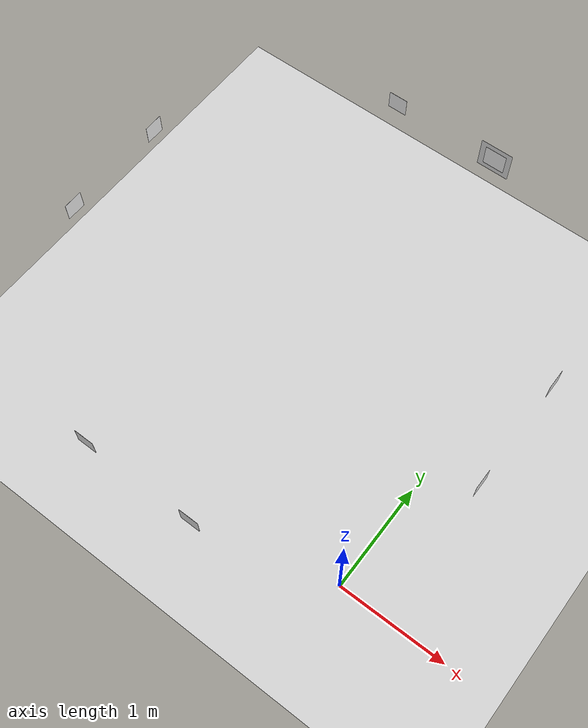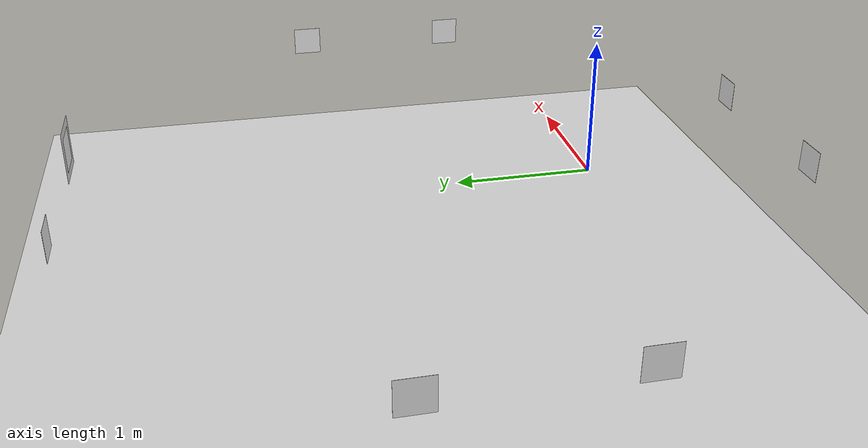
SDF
<?xml version="1.0"?>

<sdf version="1.6">
  <world name="default">

    <!-- Tweak to run at higher or lower speeds -->
    <physics name="normal" type="ode">
      <real_time_update_rate>1000</real_time_update_rate>
      <max_step_size>0.001</max_step_size>
    </physics>

    <!-- Ground plane -->
    <include>
      <uri>model://ground_plane</uri>
    </include>

    <!-- Lighting -->
    <include>
      <uri>model://sun</uri>
    </include>

    <!-- ArUco markers -->
    <model name="marker0">
      <include>
        <static>true</static>
        <uri>model://marker_0</uri>
      </include>
      <pose>0.5 1 1 0 -1.5707963267948966 0</pose>
    </model>
    <model name="marker1">
      <include>
        <static>true</static>
        <uri>model://marker_1</uri>
      </include>
      <pose>0.5 2 1 0 -1.5707963267948966 0</pose>
    </model>
    <model name="marker2">
      <include>
        <static>true</static>
        <uri>model://marker_2</uri>
      </include>
      <pose>-1 -0.5 1 0 -1.5707963267948966 -1.5707963267948966</pose>
    </model>
    <model name="marker3">
      <include>
        <static>true</static>
        <uri>model://marker_3</uri>
      </include>
      <pose>-2 -0.5 1 0 -1.5707963267948966 -1.5707963267948966</pose>
    </model>
    <model name="marker4">
      <include>
        <static>true</static>
        <uri>model://marker_4</uri>
      </include>
      <pose>-1 3.5 1 0 -1.5707963267948966 1.5707963267948966</pose>
    </model>
    <model name="marker5">
      <include>
        <static>true</static>
        <uri>model://marker_5</uri>
      </include>
      <pose>-2 3.5 1 0 -1.5707963267948966 1.5707963267948966</pose>
    </model>
    <model name="marker6">
      <include>
        <static>true</static>
        <uri>model://marker_6</uri>
      </include>
      <pose>-3.5 2 1 0 -1.5707963267948966 3.141592653589793</pose>
    </model>
    <model name="marker7">
      <include>
        <static>true</static>
        <uri>model://marker_7</uri>
      </include>
      <pose>-3.5 1 1 0 -1.5707963267948966 3.141592653589793</pose>
    </model>

  </world>
</sdf>

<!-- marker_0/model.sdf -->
<sdf version='1.5'>
  <model name='marker_0'>

    <link name='marker'>
      <pose frame=''>0 0 0 0 0 0</pose>
      <visual name='visual'>
        <geometry>
          <box>
            <size>0.1778 0.1778 1e-5</size>
          </box>
        </geometry>
        <material>
          <script>
            <uri>model://marker_0/materials/scripts</uri>
            <uri>model://marker_0/materials/textures</uri>
            <name>ArucoVisualMarker0/Marker</name>
          </script>
          <ambient>1 1 1 1</ambient>
          <diffuse>1 1 1 1</diffuse>
          <specular>0 0 0 1</specular>
          <emissive>1 1 1 0</emissive>
          <shader type='vertex'>
            <normal_map>__default__</normal_map>
          </shader>
        </material>
        <pose frame=''>0 0 0 0 0 0</pose>
        <cast_shadows>1</cast_shadows>
        <transparency>0</transparency>
      </visual>
      <collision name='collision'>
        <laser_retro>0</laser_retro>
        <max_contacts>10</max_contacts>
        <pose frame=''>0 0 0 0 0 0</pose>
        <geometry>
          <box>
            <size>0.1778 0.1778 1e-05</size>
          </box>
        </geometry>
      </collision>
    </link>

    <link name='marker_pad'>
      <pose frame='marker'>0 0 -1e-3 0 0 0</pose>
      <visual name='visual'>
        <geometry>
          <box>
            <size>0.1778 0.1778 1e-5</size>
          </box>
        </geometry>
        <material>
          <lighting>1</lighting>
          <script>
            <uri>file://media/materials/scripts/gazebo.material</uri>
            <name>Gazebo/White</name>
          </script>
          <ambient>0.3 0.3 0.3 1</ambient>
          <diffuse>0.7 0.7 0.7 1</diffuse>
          <specular>0.01 0.01 0.01 1</specular>
          <emissive>1 1 1 0</emissive>
          <shader type='vertex'>
            <normal_map>__default__</normal_map>
          </shader>
        </material>
        <cast_shadows>1</cast_shadows>
        <transparency>0</transparency>
      </visual>
      <collision name='collision'>
        <laser_retro>0</laser_retro>
        <max_contacts>10</max_contacts>
        <pose frame=''>0 0 0 0 0 0</pose>
        <geometry>
          <box>
            <size>0.1778 0.1778 1e-5</size>
          </box>
        </geometry>
      </collision>
    </link>

    <joint name='marker_JOINT_marker_pad' type='revolute'>
      <parent>marker</parent>
      <child>marker_pad</child>
      <pose frame=''>0 0 0 0 0 0</pose>
      <axis>
        <xyz>0 0 1</xyz>
        <limit>
          <upper>0</upper>
          <lower>0</lower>
        </limit>
      </axis>
    </joint>

    <static>1</static>
    <allow_auto_disable>1</allow_auto_disable>

  </model>
</sdf>

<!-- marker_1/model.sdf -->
<sdf version='1.5'>
  <model name='marker_1'>

    <link name='marker'>
      <pose frame=''>0 0 0 0 0 0</pose>
      <visual name='visual'>
        <geometry>
          <box>
            <size>0.1778 0.1778 1e-5</size>
          </box>
        </geometry>
        <material>
          <script>
            <uri>model://marker_1/materials/scripts</uri>
            <uri>model://marker_1/materials/textures</uri>
            <name>ArucoVisualMarker1/Marker</name>
          </script>
          <ambient>1 1 1 1</ambient>
          <diffuse>1 1 1 1</diffuse>
          <specular>0 0 0 1</specular>
          <emissive>1 1 1 0</emissive>
          <shader type='vertex'>
            <normal_map>__default__</normal_map>
          </shader>
        </material>
        <pose frame=''>0 0 0 0 0 0</pose>
        <cast_shadows>1</cast_shadows>
        <transparency>0</transparency>
      </visual>
      <collision name='collision'>
        <laser_retro>0</laser_retro>
        <max_contacts>10</max_contacts>
        <pose frame=''>0 0 0 0 0 0</pose>
        <geometry>
          <box>
            <size>0.1778 0.1778 1e-05</size>
          </box>
        </geometry>
      </collision>
    </link>

    <link name='marker_pad'>
      <pose frame='marker'>0 0 -1e-3 0 0 0</pose>
      <visual name='visual'>
        <geometry>
          <box>
            <size>0.1778 0.1778 1e-5</size>
          </box>
        </geometry>
        <material>
          <lighting>1</lighting>
          <script>
            <uri>file://media/materials/scripts/gazebo.material</uri>
            <name>Gazebo/White</name>
          </script>
          <ambient>0.3 0.3 0.3 1</ambient>
          <diffuse>0.7 0.7 0.7 1</diffuse>
          <specular>0.01 0.01 0.01 1</specular>
          <emissive>1 1 1 0</emissive>
          <shader type='vertex'>
            <normal_map>__default__</normal_map>
          </shader>
        </material>
        <cast_shadows>1</cast_shadows>
        <transparency>0</transparency>
      </visual>
      <collision name='collision'>
        <laser_retro>0</laser_retro>
        <max_contacts>10</max_contacts>
        <pose frame=''>0 0 0 0 0 0</pose>
        <geometry>
          <box>
            <size>0.1778 0.1778 1e-5</size>
          </box>
        </geometry>
      </collision>
    </link>

    <joint name='marker_JOINT_marker_pad' type='revolute'>
      <parent>marker</parent>
      <child>marker_pad</child>
      <pose frame=''>0 0 0 0 0 0</pose>
      <axis>
        <xyz>0 0 1</xyz>
        <limit>
          <upper>0</upper>
          <lower>0</lower>
        </limit>
      </axis>
    </joint>

    <static>1</static>
    <allow_auto_disable>1</allow_auto_disable>

  </model>
</sdf>

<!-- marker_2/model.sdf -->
<sdf version='1.5'>
  <model name='marker_2'>

    <link name='marker'>
      <pose frame=''>0 0 0 0 0 0</pose>
      <visual name='visual'>
        <geometry>
          <box>
            <size>0.1778 0.1778 1e-5</size>
          </box>
        </geometry>
        <material>
          <script>
            <uri>model://marker_2/materials/scripts</uri>
            <uri>model://marker_2/materials/textures</uri>
            <name>ArucoVisualMarker2/Marker</name>
          </script>
          <ambient>1 1 1 1</ambient>
          <diffuse>1 1 1 1</diffuse>
          <specular>0 0 0 1</specular>
          <emissive>1 1 1 0</emissive>
          <shader type='vertex'>
            <normal_map>__default__</normal_map>
          </shader>
        </material>
        <pose frame=''>0 0 0 0 0 0</pose>
        <cast_shadows>1</cast_shadows>
        <transparency>0</transparency>
      </visual>
      <collision name='collision'>
        <laser_retro>0</laser_retro>
        <max_contacts>10</max_contacts>
        <pose frame=''>0 0 0 0 0 0</pose>
        <geometry>
          <box>
            <size>0.1778 0.1778 1e-05</size>
          </box>
        </geometry>
      </collision>
    </link>

    <link name='marker_pad'>
      <pose frame='marker'>0 0 -1e-3 0 0 0</pose>
      <visual name='visual'>
        <geometry>
          <box>
            <size>0.1778 0.1778 1e-5</size>
          </box>
        </geometry>
        <material>
          <lighting>1</lighting>
          <script>
            <uri>file://media/materials/scripts/gazebo.material</uri>
            <name>Gazebo/White</name>
          </script>
          <ambient>0.3 0.3 0.3 1</ambient>
          <diffuse>0.7 0.7 0.7 1</diffuse>
          <specular>0.01 0.01 0.01 1</specular>
          <emissive>1 1 1 0</emissive>
          <shader type='vertex'>
            <normal_map>__default__</normal_map>
          </shader>
        </material>
        <cast_shadows>1</cast_shadows>
        <transparency>0</transparency>
      </visual>
      <collision name='collision'>
        <laser_retro>0</laser_retro>
        <max_contacts>10</max_contacts>
        <pose frame=''>0 0 0 0 0 0</pose>
        <geometry>
          <box>
            <size>0.1778 0.1778 1e-5</size>
          </box>
        </geometry>
      </collision>
    </link>

    <joint name='marker_JOINT_marker_pad' type='revolute'>
      <parent>marker</parent>
      <child>marker_pad</child>
      <pose frame=''>0 0 0 0 0 0</pose>
      <axis>
        <xyz>0 0 1</xyz>
        <limit>
          <upper>0</upper>
          <lower>0</lower>
        </limit>
      </axis>
    </joint>

    <static>1</static>
    <allow_auto_disable>1</allow_auto_disable>

  </model>
</sdf>

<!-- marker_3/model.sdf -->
<sdf version='1.5'>
  <model name='marker_3'>

    <link name='marker'>
      <pose frame=''>0 0 0 0 0 0</pose>
      <visual name='visual'>
        <geometry>
          <box>
            <size>0.1778 0.1778 1e-5</size>
          </box>
        </geometry>
        <material>
          <script>
            <uri>model://marker_3/materials/scripts</uri>
            <uri>model://marker_3/materials/textures</uri>
            <name>ArucoVisualMarker3/Marker</name>
          </script>
          <ambient>1 1 1 1</ambient>
          <diffuse>1 1 1 1</diffuse>
          <specular>0 0 0 1</specular>
          <emissive>1 1 1 0</emissive>
          <shader type='vertex'>
            <normal_map>__default__</normal_map>
          </shader>
        </material>
        <pose frame=''>0 0 0 0 0 0</pose>
        <cast_shadows>1</cast_shadows>
        <transparency>0</transparency>
      </visual>
      <collision name='collision'>
        <laser_retro>0</laser_retro>
        <max_contacts>10</max_contacts>
        <pose frame=''>0 0 0 0 0 0</pose>
        <geometry>
          <box>
            <size>0.1778 0.1778 1e-05</size>
          </box>
        </geometry>
      </collision>
    </link>

    <link name='marker_pad'>
      <pose frame='marker'>0 0 -1e-3 0 0 0</pose>
      <visual name='visual'>
        <geometry>
          <box>
            <size>0.1778 0.1778 1e-5</size>
          </box>
        </geometry>
        <material>
          <lighting>1</lighting>
          <script>
            <uri>file://media/materials/scripts/gazebo.material</uri>
            <name>Gazebo/White</name>
          </script>
          <ambient>0.3 0.3 0.3 1</ambient>
          <diffuse>0.7 0.7 0.7 1</diffuse>
          <specular>0.01 0.01 0.01 1</specular>
          <emissive>1 1 1 0</emissive>
          <shader type='vertex'>
            <normal_map>__default__</normal_map>
          </shader>
        </material>
        <cast_shadows>1</cast_shadows>
        <transparency>0</transparency>
      </visual>
      <collision name='collision'>
        <laser_retro>0</laser_retro>
        <max_contacts>10</max_contacts>
        <pose frame=''>0 0 0 0 0 0</pose>
        <geometry>
          <box>
            <size>0.1778 0.1778 1e-5</size>
          </box>
        </geometry>
      </collision>
    </link>

    <joint name='marker_JOINT_marker_pad' type='revolute'>
      <parent>marker</parent>
      <child>marker_pad</child>
      <pose frame=''>0 0 0 0 0 0</pose>
      <axis>
        <xyz>0 0 1</xyz>
        <limit>
          <upper>0</upper>
          <lower>0</lower>
        </limit>
      </axis>
    </joint>

    <static>1</static>
    <allow_auto_disable>1</allow_auto_disable>

  </model>
</sdf>

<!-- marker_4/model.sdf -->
<sdf version='1.5'>
  <model name='marker_4'>

    <link name='marker'>
      <pose frame=''>0 0 0 0 0 0</pose>
      <visual name='visual'>
        <geometry>
          <box>
            <size>0.2 0.2 1e-5</size>
          </box>
        </geometry>
        <material>
          <script>
            <uri>model://marker_4/materials/scripts</uri>
            <uri>model://marker_4/materials/textures</uri>
            <name>ArucoVisualMarker4/Marker</name>
          </script>
          <ambient>1 1 1 1</ambient>
          <diffuse>1 1 1 1</diffuse>
          <specular>0 0 0 1</specular>
          <emissive>1 1 1 0</emissive>
          <shader type='vertex'>
            <normal_map>__default__</normal_map>
          </shader>
        </material>
        <pose frame=''>0 0 0 0 0 0</pose>
        <cast_shadows>1</cast_shadows>
        <transparency>0</transparency>
      </visual>
      <collision name='collision'>
        <laser_retro>0</laser_retro>
        <max_contacts>10</max_contacts>
        <pose frame=''>0 0 0 0 0 0</pose>
        <geometry>
          <box>
            <size>0.2 0.2 1e-05</size>
          </box>
        </geometry>
      </collision>
    </link>

    <link name='marker_pad'>
      <pose frame='marker'>0 0 -1e-3 0 0 0</pose>
      <visual name='visual'>
        <geometry>
          <box>
            <size>0.3 0.3 1e-5</size>
          </box>
        </geometry>
        <material>
          <lighting>1</lighting>
          <script>
            <uri>file://media/materials/scripts/gazebo.material</uri>
            <name>Gazebo/White</name>
          </script>
          <ambient>0.3 0.3 0.3 1</ambient>
          <diffuse>0.7 0.7 0.7 1</diffuse>
          <specular>0.01 0.01 0.01 1</specular>
          <emissive>1 1 1 0</emissive>
          <shader type='vertex'>
            <normal_map>__default__</normal_map>
          </shader>
        </material>
        <cast_shadows>1</cast_shadows>
        <transparency>0</transparency>
      </visual>
      <collision name='collision'>
        <laser_retro>0</laser_retro>
        <max_contacts>10</max_contacts>
        <pose frame=''>0 0 0 0 0 0</pose>
        <geometry>
          <box>
            <size>0.1778 0.1778 1e-5</size>
          </box>
        </geometry>
      </collision>
    </link>

    <joint name='marker_JOINT_marker_pad' type='revolute'>
      <parent>marker</parent>
      <child>marker_pad</child>
      <pose frame=''>0 0 0 0 0 0</pose>
      <axis>
        <xyz>0 0 1</xyz>
        <limit>
          <upper>0</upper>
          <lower>0</lower>
        </limit>
      </axis>
    </joint>

    <static>1</static>
    <allow_auto_disable>1</allow_auto_disable>

  </model>
</sdf>

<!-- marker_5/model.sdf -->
<sdf version='1.5'>
  <model name='marker_5'>

    <link name='marker'>
      <pose frame=''>0 0 0 0 0 0</pose>
      <visual name='visual'>
        <geometry>
          <box>
            <size>0.1778 0.1778 1e-5</size>
          </box>
        </geometry>
        <material>
          <script>
            <uri>model://marker_5/materials/scripts</uri>
            <uri>model://marker_5/materials/textures</uri>
            <name>ArucoVisualMarker5/Marker</name>
          </script>
          <ambient>1 1 1 1</ambient>
          <diffuse>1 1 1 1</diffuse>
          <specular>0 0 0 1</specular>
          <emissive>1 1 1 0</emissive>
          <shader type='vertex'>
            <normal_map>__default__</normal_map>
          </shader>
        </material>
        <pose frame=''>0 0 0 0 0 0</pose>
        <cast_shadows>1</cast_shadows>
        <transparency>0</transparency>
      </visual>
      <collision name='collision'>
        <laser_retro>0</laser_retro>
        <max_contacts>10</max_contacts>
        <pose frame=''>0 0 0 0 0 0</pose>
        <geometry>
          <box>
            <size>0.1778 0.1778 1e-05</size>
          </box>
        </geometry>
      </collision>
    </link>

    <link name='marker_pad'>
      <pose frame='marker'>0 0 -1e-3 0 0 0</pose>
      <visual name='visual'>
        <geometry>
          <box>
            <size>0.1778 0.1778 1e-5</size>
          </box>
        </geometry>
        <material>
          <lighting>1</lighting>
          <script>
            <uri>file://media/materials/scripts/gazebo.material</uri>
            <name>Gazebo/White</name>
          </script>
          <ambient>0.3 0.3 0.3 1</ambient>
          <diffuse>0.7 0.7 0.7 1</diffuse>
          <specular>0.01 0.01 0.01 1</specular>
          <emissive>1 1 1 0</emissive>
          <shader type='vertex'>
            <normal_map>__default__</normal_map>
          </shader>
        </material>
        <cast_shadows>1</cast_shadows>
        <transparency>0</transparency>
      </visual>
      <collision name='collision'>
        <laser_retro>0</laser_retro>
        <max_contacts>10</max_contacts>
        <pose frame=''>0 0 0 0 0 0</pose>
        <geometry>
          <box>
            <size>0.1778 0.1778 1e-5</size>
          </box>
        </geometry>
      </collision>
    </link>

    <joint name='marker_JOINT_marker_pad' type='revolute'>
      <parent>marker</parent>
      <child>marker_pad</child>
      <pose frame=''>0 0 0 0 0 0</pose>
      <axis>
        <xyz>0 0 1</xyz>
        <limit>
          <upper>0</upper>
          <lower>0</lower>
        </limit>
      </axis>
    </joint>

    <static>1</static>
    <allow_auto_disable>1</allow_auto_disable>

  </model>
</sdf>

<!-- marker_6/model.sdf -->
<sdf version='1.5'>
  <model name='marker_6'>

    <link name='marker'>
      <pose frame=''>0 0 0 0 0 0</pose>
      <visual name='visual'>
        <geometry>
          <box>
            <size>0.1778 0.1778 1e-5</size>
          </box>
        </geometry>
        <material>
          <script>
            <uri>model://marker_6/materials/scripts</uri>
            <uri>model://marker_6/materials/textures</uri>
            <name>ArucoVisualMarker6/Marker</name>
          </script>
          <ambient>1 1 1 1</ambient>
          <diffuse>1 1 1 1</diffuse>
          <specular>0 0 0 1</specular>
          <emissive>1 1 1 0</emissive>
          <shader type='vertex'>
            <normal_map>__default__</normal_map>
          </shader>
        </material>
        <pose frame=''>0 0 0 0 0 0</pose>
        <cast_shadows>1</cast_shadows>
        <transparency>0</transparency>
      </visual>
      <collision name='collision'>
        <laser_retro>0</laser_retro>
        <max_contacts>10</max_contacts>
        <pose frame=''>0 0 0 0 0 0</pose>
        <geometry>
          <box>
            <size>0.1778 0.1778 1e-05</size>
          </box>
        </geometry>
      </collision>
    </link>

    <link name='marker_pad'>
      <pose frame='marker'>0 0 -1e-3 0 0 0</pose>
      <visual name='visual'>
        <geometry>
          <box>
            <size>0.1778 0.1778 1e-5</size>
          </box>
        </geometry>
        <material>
          <lighting>1</lighting>
          <script>
            <uri>file://media/materials/scripts/gazebo.material</uri>
            <name>Gazebo/White</name>
          </script>
          <ambient>0.3 0.3 0.3 1</ambient>
          <diffuse>0.7 0.7 0.7 1</diffuse>
          <specular>0.01 0.01 0.01 1</specular>
          <emissive>1 1 1 0</emissive>
          <shader type='vertex'>
            <normal_map>__default__</normal_map>
          </shader>
        </material>
        <cast_shadows>1</cast_shadows>
        <transparency>0</transparency>
      </visual>
      <collision name='collision'>
        <laser_retro>0</laser_retro>
        <max_contacts>10</max_contacts>
        <pose frame=''>0 0 0 0 0 0</pose>
        <geometry>
          <box>
            <size>0.1778 0.1778 1e-5</size>
          </box>
        </geometry>
      </collision>
    </link>

    <joint name='marker_JOINT_marker_pad' type='revolute'>
      <parent>marker</parent>
      <child>marker_pad</child>
      <pose frame=''>0 0 0 0 0 0</pose>
      <axis>
        <xyz>0 0 1</xyz>
        <limit>
          <upper>0</upper>
          <lower>0</lower>
        </limit>
      </axis>
    </joint>

    <static>1</static>
    <allow_auto_disable>1</allow_auto_disable>

  </model>
</sdf>

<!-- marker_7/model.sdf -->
<sdf version='1.5'>
  <model name='marker_7'>

    <link name='marker'>
      <pose frame=''>0 0 0 0 0 0</pose>
      <visual name='visual'>
        <geometry>
          <box>
            <size>0.1778 0.1778 1e-5</size>
          </box>
        </geometry>
        <material>
          <script>
            <uri>model://marker_7/materials/scripts</uri>
            <uri>model://marker_7/materials/textures</uri>
            <name>ArucoVisualMarker7/Marker</name>
          </script>
          <ambient>1 1 1 1</ambient>
          <diffuse>1 1 1 1</diffuse>
          <specular>0 0 0 1</specular>
          <emissive>1 1 1 0</emissive>
          <shader type='vertex'>
            <normal_map>__default__</normal_map>
          </shader>
        </material>
        <pose frame=''>0 0 0 0 0 0</pose>
        <cast_shadows>1</cast_shadows>
        <transparency>0</transparency>
      </visual>
      <collision name='collision'>
        <laser_retro>0</laser_retro>
        <max_contacts>10</max_contacts>
        <pose frame=''>0 0 0 0 0 0</pose>
        <geometry>
          <box>
            <size>0.1778 0.1778 1e-05</size>
          </box>
        </geometry>
      </collision>
    </link>

    <link name='marker_pad'>
      <pose frame='marker'>0 0 -1e-3 0 0 0</pose>
      <visual name='visual'>
        <geometry>
          <box>
            <size>0.1778 0.1778 1e-5</size>
          </box>
        </geometry>
        <material>
          <lighting>1</lighting>
          <script>
            <uri>file://media/materials/scripts/gazebo.material</uri>
            <name>Gazebo/White</name>
          </script>
          <ambient>0.3 0.3 0.3 1</ambient>
          <diffuse>0.7 0.7 0.7 1</diffuse>
          <specular>0.01 0.01 0.01 1</specular>
          <emissive>1 1 1 0</emissive>
          <shader type='vertex'>
            <normal_map>__default__</normal_map>
          </shader>
        </material>
        <cast_shadows>1</cast_shadows>
        <transparency>0</transparency>
      </visual>
      <collision name='collision'>
        <laser_retro>0</laser_retro>
        <max_contacts>10</max_contacts>
        <pose frame=''>0 0 0 0 0 0</pose>
        <geometry>
          <box>
            <size>0.1778 0.1778 1e-5</size>
          </box>
        </geometry>
      </collision>
    </link>

    <joint name='marker_JOINT_marker_pad' type='revolute'>
      <parent>marker</parent>
      <child>marker_pad</child>
      <pose frame=''>0 0 0 0 0 0</pose>
      <axis>
        <xyz>0 0 1</xyz>
        <limit>
          <upper>0</upper>
          <lower>0</lower>
        </limit>
      </axis>
    </joint>

    <static>1</static>
    <allow_auto_disable>1</allow_auto_disable>

  </model>
</sdf>
